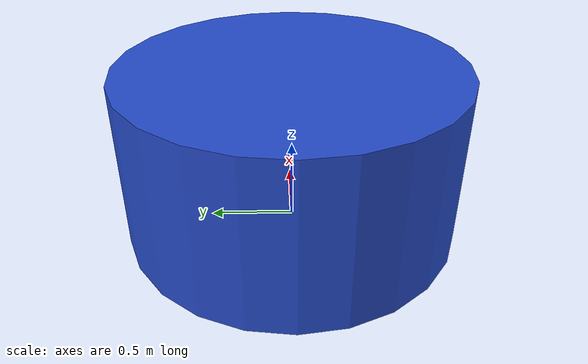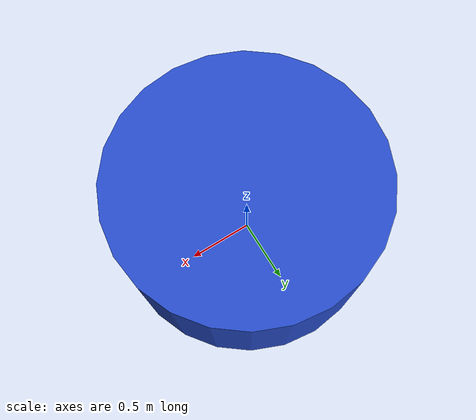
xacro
<?xml version="1.0"?>
<robot xmlns:xacro="http://www.ros.org/wiki/xacro" name="cylinder">

<!-- Useful values -->
<xacro:property name="DegToRad" value="0.017453293"/>
<xacro:property name="RadToDeg" value="57.295779513"/>

<!-- Values defining the box -->
<xacro:arg name="x" default="0" />
<xacro:property name="x" value="$(arg x)" />
<xacro:arg name="y" default="0" />
<xacro:property name="y" value="$(arg y)" />
<xacro:arg name="z" default="0.5" />
<xacro:property name="z" value="$(arg z)" />
<xacro:arg name="roll" default="0" />
<xacro:property name="roll" value="$(arg roll)" />
<xacro:arg name="yaw" default="0" />
<xacro:property name="yaw" value="$(arg yaw)" />
<xacro:arg name="radius" default="1" />
<xacro:property name="radius" value="$(arg radius)" />
<xacro:arg name="length" default="1" />
<xacro:property name="length" value="$(arg length)" />

<!-- Macro to place the cylinder -->
<!-- ^ means: use the value of the variable with the same name already defined -->
<xacro:macro name="Origin" params="x:=^ y:=^ z:=^ roll:=^ yaw:=^">
  <origin xyz="${x} ${y} ${z}" rpy="${roll} 0 ${yaw}" />
</xacro:macro>

<!-- Macro to create the cylinder -->
<xacro:macro name="Cylinder" params="radius:=^ length:=^">
  <geometry>
		<cylinder radius="${radius}" length="${length}" />
  </geometry>
</xacro:macro>

<!-- Cylinder ! -->
  <link name="my_cylinder">
    <inertial>
      <xacro:Origin/>
      <mass value="1e3" />
      <inertia  ixx="1e3" ixy="1e3"  ixz="1e3"  iyy="1e3"  iyz="1e3"  izz="1e3" />
    </inertial>
    <visual>
      <xacro:Origin/>
      <xacro:Cylinder/>
    </visual>
    <collision>
      <xacro:Origin/>
      <xacro:Cylinder/>
    </collision>
  </link>
  <gazebo reference="my_cylinder">
    <static>true</static>
    <turnGravityOff>true</turnGravityOff>
    <material>Gazebo/Blue</material>
  </gazebo>

</robot>
